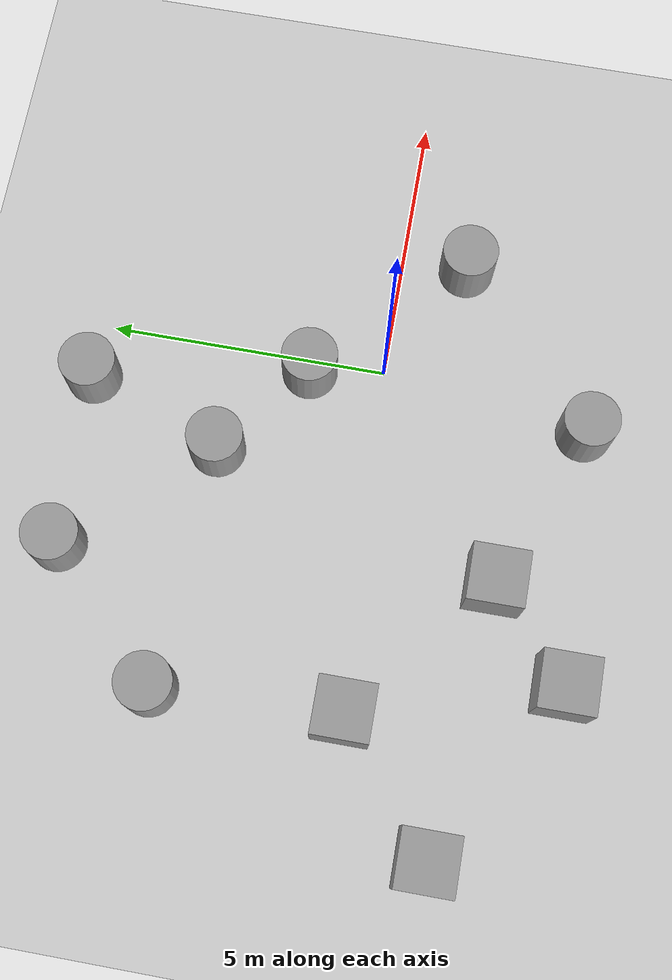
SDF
<sdf version="1.7">
 <world name="default">
  <light name="sun" type="directional">
   <pose>0 0 10 0 -0 0</pose>
   <diffuse>0.8 0.8 0.8 1</diffuse>
   <specular>0.2 0.2 0.2 1</specular>
   <attenuation>
    <range>1000</range>
    <constant>0.9</constant>
    <linear>0.01</linear>
    <quadratic>0.001</quadratic>
   </attenuation>
   <direction>-0.5 0.1 -0.9</direction>
   <spot><inner_angle>0</inner_angle><outer_angle>0</outer_angle><falloff>0</falloff></spot>
  </light>
  <model name="ground_plane">
   <static>1</static>
   <link name="link">
    <collision name="collision">
     <geometry><plane><normal>0 0 1</normal><size>100 100</size></plane></geometry>
     <surface>
      <contact><collide_bitmask>65535</collide_bitmask></contact>
      <friction><ode><mu>100</mu><mu2>50</mu2></ode></friction>
     </surface>
    </collision>
    <visual name="visual">
     <cast_shadows>0</cast_shadows>
     <geometry><plane><normal>0 0 1</normal><size>100 100</size></plane></geometry>
     <material>
      <script><uri>file://media/materials/scripts/gazebo.material</uri><name>Gazebo/Grey</name></script>
     </material>
    </visual>
   </link>
  </model>
  <gravity>0 0 -9.8</gravity>
  <magnetic_field>6e-06 2.3e-05 -4.2e-05</magnetic_field>
  <atmosphere type="adiabatic"/>
  <physics type="ode">
   <max_step_size>0.001</max_step_size>
   <real_time_factor>1</real_time_factor>
   <real_time_update_rate>1000</real_time_update_rate>
  </physics>
  <scene><ambient>0.4 0.4 0.4 1</ambient><background>0.7 0.7 0.7 1</background><shadows>1</shadows></scene>
  <audio><device>default</device></audio>
  <spherical_coordinates>
   <surface_model>EARTH_WGS84</surface_model>
   <latitude_deg>0</latitude_deg>
   <longitude_deg>0</longitude_deg>
   <elevation>0</elevation>
   <heading_deg>0</heading_deg>
  </spherical_coordinates>
  <model name="unit_box">
   <pose>-3.53562 -2.51565 0.5 0 -0 5e-06</pose>
   <link name="link">
    <inertial>
     <mass>1</mass>
     <inertia>
      <ixx>0.166667</ixx>
      <ixy>0</ixy>
      <ixz>0</ixz>
      <iyy>0.166667</iyy>
      <iyz>0</iyz>
      <izz>0.166667</izz>
     </inertia>
    </inertial>
    <collision name="collision"><geometry><box><size>1 1 1</size></box></geometry></collision>
    <visual name="visual">
     <geometry><box><size>1 1 1</size></box></geometry>
     <material>
      <script><name>Gazebo/Grey</name><uri>file://media/materials/scripts/gazebo.material</uri></script>
     </material>
    </visual>
   </link>
  </model>
  <model name="unit_box_0">
   <pose>-6.18564 -0.330281 0.5 0 -0 5e-06</pose>
   <link name="link">
    <inertial>
     <mass>1</mass>
     <inertia>
      <ixx>0.166667</ixx>
      <ixy>0</ixy>
      <ixz>0</ixz>
      <iyy>0.166667</iyy>
      <iyz>0</iyz>
      <izz>0.166667</izz>
     </inertia>
    </inertial>
    <collision name="collision"><geometry><box><size>1 1 1</size></box></geometry></collision>
    <visual name="visual">
     <geometry><box><size>1 1 1</size></box></geometry>
     <material>
      <script><name>Gazebo/Grey</name><uri>file://media/materials/scripts/gazebo.material</uri></script>
     </material>
    </visual>
   </link>
  </model>
  <model name="unit_cylinder">
   <pose>-1.9565 2.68255 0.499998 3e-06 -3e-06 0</pose>
   <link name="link">
    <inertial>
     <mass>1</mass>
     <inertia><ixx>0.145833</ixx><ixy>0</ixy><ixz>0</ixz><iyy>0.145833</iyy><iyz>0</iyz><izz>0.125</izz></inertia>
    </inertial>
    <collision name="collision">
     <geometry><cylinder><radius>0.5</radius><length>1</length></cylinder></geometry>
    </collision>
    <visual name="visual">
     <geometry><cylinder><radius>0.5</radius><length>1</length></cylinder></geometry>
     <material>
      <script><name>Gazebo/Grey</name><uri>file://media/materials/scripts/gazebo.material</uri></script>
     </material>
    </visual>
   </link>
  </model>
  <model name="unit_cylinder_0">
   <pose>2.24214 -1.18133 0.499997 3e-06 -4e-06 0</pose>
   <link name="link">
    <inertial>
     <mass>1</mass>
     <inertia><ixx>0.145833</ixx><ixy>0</ixy><ixz>0</ixz><iyy>0.145833</iyy><iyz>0</iyz><izz>0.125</izz></inertia>
    </inertial>
    <collision name="collision">
     <geometry><cylinder><radius>0.5</radius><length>1</length></cylinder></geometry>
    </collision>
    <visual name="visual">
     <geometry><cylinder><radius>0.5</radius><length>1</length></cylinder></geometry>
     <material>
      <script><name>Gazebo/Grey</name><uri>file://media/materials/scripts/gazebo.material</uri></script>
     </material>
    </visual>
   </link>
  </model>
  <model name="unit_cylinder_1">
   <pose>-6.32046 2.99732 0.499998 3e-06 -2e-06 0</pose>
   <link name="link">
    <inertial>
     <mass>1</mass>
     <inertia><ixx>0.145833</ixx><ixy>0</ixy><ixz>0</ixz><iyy>0.145833</iyy><iyz>0</iyz><izz>0.125</izz></inertia>
    </inertial>
    <collision name="collision">
     <geometry><cylinder><radius>0.5</radius><length>1</length></cylinder></geometry>
    </collision>
    <visual name="visual">
     <geometry><cylinder><radius>0.5</radius><length>1</length></cylinder></geometry>
     <material>
      <script><name>Gazebo/Grey</name><uri>file://media/materials/scripts/gazebo.material</uri></script>
     </material>
    </visual>
   </link>
  </model>
  <model name="unit_cylinder_2">
   <pose>-0.99745 5.16062 0.499998 3e-06 -2e-06 0</pose>
   <link name="link">
    <inertial>
     <mass>1</mass>
     <inertia><ixx>0.145833</ixx><ixy>0</ixy><ixz>0</ixz><iyy>0.145833</iyy><iyz>0</iyz><izz>0.125</izz></inertia>
    </inertial>
    <collision name="collision">
     <geometry><cylinder><radius>0.5</radius><length>1</length></cylinder></geometry>
    </collision>
    <visual name="visual">
     <geometry><cylinder><radius>0.5</radius><length>1</length></cylinder></geometry>
     <material>
      <script><name>Gazebo/Grey</name><uri>file://media/materials/scripts/gazebo.material</uri></script>
     </material>
    </visual>
   </link>
  </model>
  <model name="unit_cylinder_3">
   <pose>-4.13974 5.09352 0.499992 -3e-06 2e-06 0</pose>
   <link name="link">
    <inertial>
     <mass>1</mass>
     <inertia><ixx>0.145833</ixx><ixy>0</ixy><ixz>0</ixz><iyy>0.145833</iyy><iyz>0</iyz><izz>0.125</izz></inertia>
    </inertial>
    <collision name="collision">
     <geometry><cylinder><radius>0.5</radius><length>1</length></cylinder></geometry>
    </collision>
    <visual name="visual">
     <geometry><cylinder><radius>0.5</radius><length>1</length></cylinder></geometry>
     <material>
      <script><name>Gazebo/Grey</name><uri>file://media/materials/scripts/gazebo.material</uri></script>
     </material>
    </visual>
   </link>
  </model>
  <model name="unit_box_1">
   <pose>-5.10938 -3.9188 0.5 0 -0 5e-06</pose>
   <link name="link">
    <inertial>
     <mass>1</mass>
     <inertia>
      <ixx>0.166667</ixx>
      <ixy>0</ixy>
      <ixz>0</ixz>
      <iyy>0.166667</iyy>
      <iyz>0</iyz>
      <izz>0.166667</izz>
     </inertia>
    </inertial>
    <collision name="collision"><geometry><box><size>1 1 1</size></box></geometry></collision>
    <visual name="visual">
     <geometry><box><size>1 1 1</size></box></geometry>
     <material>
      <script><name>Gazebo/Grey</name><uri>file://media/materials/scripts/gazebo.material</uri></script>
     </material>
    </visual>
   </link>
  </model>
  <model name="unit_box_2">
   <pose>-8.3227 -2.0613 0.5 0 -0 5e-06</pose>
   <link name="link">
    <inertial>
     <mass>1</mass>
     <inertia>
      <ixx>0.166667</ixx>
      <ixy>0</ixy>
      <ixz>0</ixz>
      <iyy>0.166667</iyy>
      <iyz>0</iyz>
      <izz>0.166667</izz>
     </inertia>
    </inertial>
    <collision name="collision"><geometry><box><size>1 1 1</size></box></geometry></collision>
    <visual name="visual">
     <geometry><box><size>1 1 1</size></box></geometry>
     <material>
      <script><name>Gazebo/Grey</name><uri>file://media/materials/scripts/gazebo.material</uri></script>
     </material>
    </visual>
   </link>
  </model>
  <model name="unit_cylinder_4">
   <pose>-0.533206 -3.72308 0.499992 -3e-06 2e-06 0</pose>
   <link name="link">
    <inertial>
     <mass>1</mass>
     <inertia><ixx>0.145833</ixx><ixy>0</ixy><ixz>0</ixz><iyy>0.145833</iyy><iyz>0</iyz><izz>0.125</izz></inertia>
    </inertial>
    <collision name="collision">
     <geometry><cylinder><radius>0.5</radius><length>1</length></cylinder></geometry>
    </collision>
    <visual name="visual">
     <geometry><cylinder><radius>0.5</radius><length>1</length></cylinder></geometry>
     <material>
      <script><name>Gazebo/Grey</name><uri>file://media/materials/scripts/gazebo.material</uri></script>
     </material>
    </visual>
   </link>
  </model>
  <model name="unit_cylinder_5">
   <pose>-0.219529 1.32323 0.499997 3e-06 -3e-06 0</pose>
   <link name="link">
    <inertial>
     <mass>1</mass>
     <inertia><ixx>0.145833</ixx><ixy>0</ixy><ixz>0</ixz><iyy>0.145833</iyy><iyz>0</iyz><izz>0.125</izz></inertia>
    </inertial>
    <collision name="collision">
     <geometry><cylinder><radius>0.5</radius><length>1</length></cylinder></geometry>
    </collision>
    <visual name="visual">
     <geometry><cylinder><radius>0.5</radius><length>1</length></cylinder></geometry>
     <material>
      <script><name>Gazebo/Grey</name><uri>file://media/materials/scripts/gazebo.material</uri></script>
     </material>
    </visual>
   </link>
  </model>
 </world>
</sdf>
